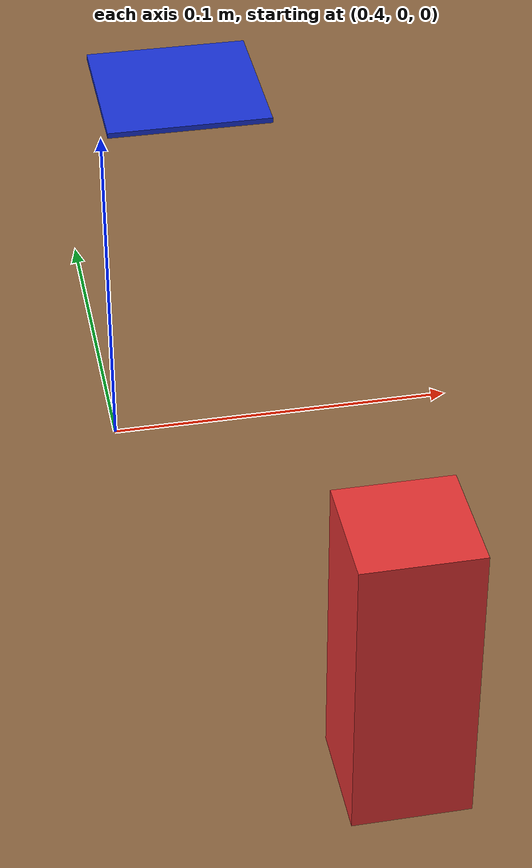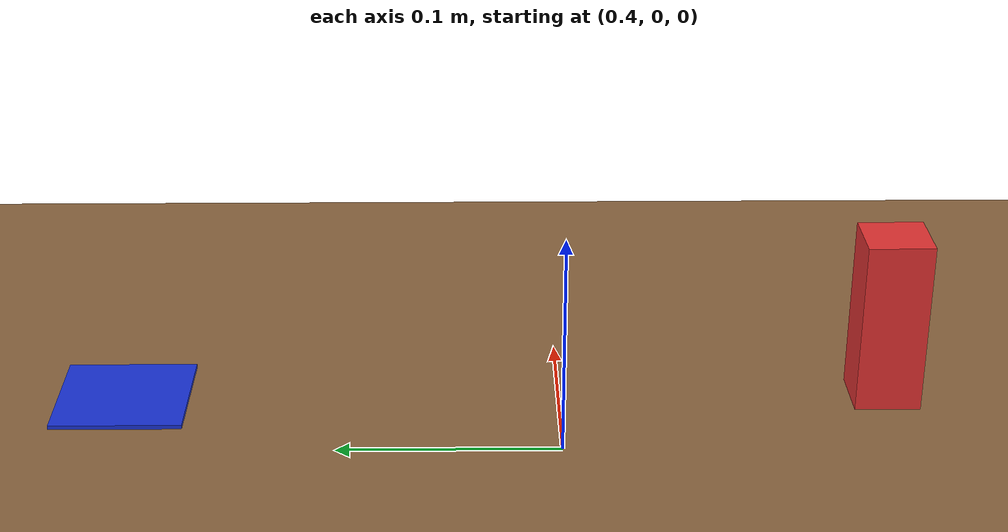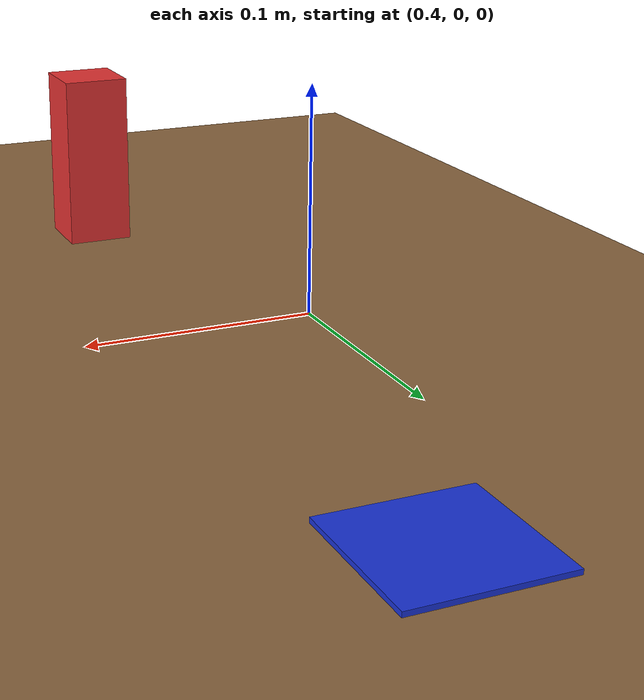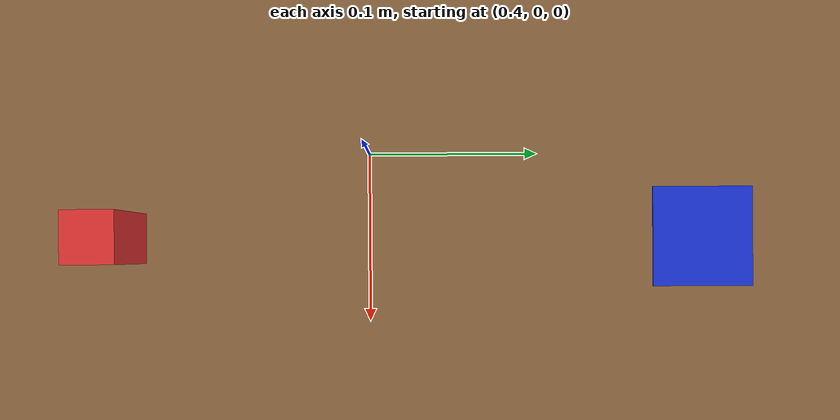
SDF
<?xml version="1.0"?>
<sdf version="1.6">
  <world name="pick_place_table">
    <physics name="1ms" type="ignored">
      <max_step_size>0.001</max_step_size>
      <real_time_factor>1.0</real_time_factor>
    </physics>
    <plugin filename="ignition-gazebo-physics-system" name="gz::sim::systems::Physics"/>
    <plugin filename="ignition-gazebo-user-commands-system" name="gz::sim::systems::UserCommands"/>
    <plugin filename="ignition-gazebo-scene-broadcaster-system" name="gz::sim::systems::SceneBroadcaster"/>

    <light type="directional" name="sun">
      <cast_shadows>true</cast_shadows>
      <pose>0 0 10 0 0 0</pose>
      <diffuse>1 1 1 1</diffuse>
      <specular>0.5 0.5 0.5 1</specular>
      <attenuation>
        <range>1000</range>
        <constant>0.9</constant>
        <linear>0.01</linear>
        <quadratic>0.001</quadratic>
      </attenuation>
      <direction>-0.5 0.1 -0.9</direction>
    </light>

    <model name="ground_plane">
      <static>true</static>
      <link name="link">
        <collision name="collision">
          <geometry><plane><normal>0 0 1</normal><size>100 100</size></plane></geometry>
        </collision>
        <visual name="visual">
          <geometry><plane><normal>0 0 1</normal><size>100 100</size></plane></geometry>
          <material>
            <ambient>0.6 0.6 0.6 1</ambient>
            <diffuse>0.6 0.6 0.6 1</diffuse>
          </material>
        </visual>
      </link>
    </model>

    <model name="table">
      <static>true</static>
      <pose>0.4 0.0 -0.025 0 0 0</pose>
      <link name="link">
        <collision name="collision">
          <geometry><box><size>1.0 0.8 0.05</size></box></geometry>
        </collision>
        <visual name="visual">
          <geometry><box><size>1.0 0.8 0.05</size></box></geometry>
          <material>
            <ambient>0.55 0.4 0.25 1</ambient>
            <diffuse>0.55 0.4 0.25 1</diffuse>
          </material>
        </visual>
      </link>
    </model>

    <model name="pick_object">
      <pose>0.45 -0.15 0.04 0 0 0</pose>
      <link name="link">
        <inertial>
          <mass>0.05</mass>
          <inertia><ixx>0.00002</ixx><ixy>0</ixy><ixz>0</ixz>
                    <iyy>0.00002</iyy><iyz>0</iyz><izz>0.00001</izz></inertia>
        </inertial>
        <collision name="collision">
          <geometry><box><size>0.03 0.03 0.08</size></box></geometry>
          <surface>
            <friction><ode><mu>1.2</mu><mu2>1.2</mu2></ode></friction>
          </surface>
        </collision>
        <visual name="visual">
          <geometry><box><size>0.03 0.03 0.08</size></box></geometry>
          <material>
            <ambient>0.9 0.2 0.2 1</ambient>
            <diffuse>0.9 0.2 0.2 1</diffuse>
          </material>
        </visual>
      </link>

      <plugin filename="ignition-gazebo-detachable-joint-system"
              name="ignition::gazebo::systems::DetachableJoint">
        <parent_link>link</parent_link>
        <child_model>ur7e_gz</child_model>
        <child_link>onrobot_base_link</child_link>
        <detach_topic>/pick_object/detach</detach_topic>
        <attach_topic>/pick_object/attach</attach_topic>
        <output_topic>/pick_object/state</output_topic>
      </plugin>
    </model>

    <!-- Where 1.7 places it — a flat marker, not something the arm ever
         grasps, so no DetachableJoint plugin. Static so it can't be knocked
         off the table by a slightly-off retreat motion. -->
    <model name="place_target">
      <static>true</static>
      <pose>0.45 0.20 0.001 0 0 0</pose>
      <link name="link">
        <visual name="visual">
          <geometry><box><size>0.06 0.06 0.002</size></box></geometry>
          <material>
            <ambient>0.1 0.2 0.85 1</ambient>
            <diffuse>0.1 0.2 0.85 1</diffuse>
          </material>
        </visual>
      </link>
    </model>
  </world>
</sdf>
